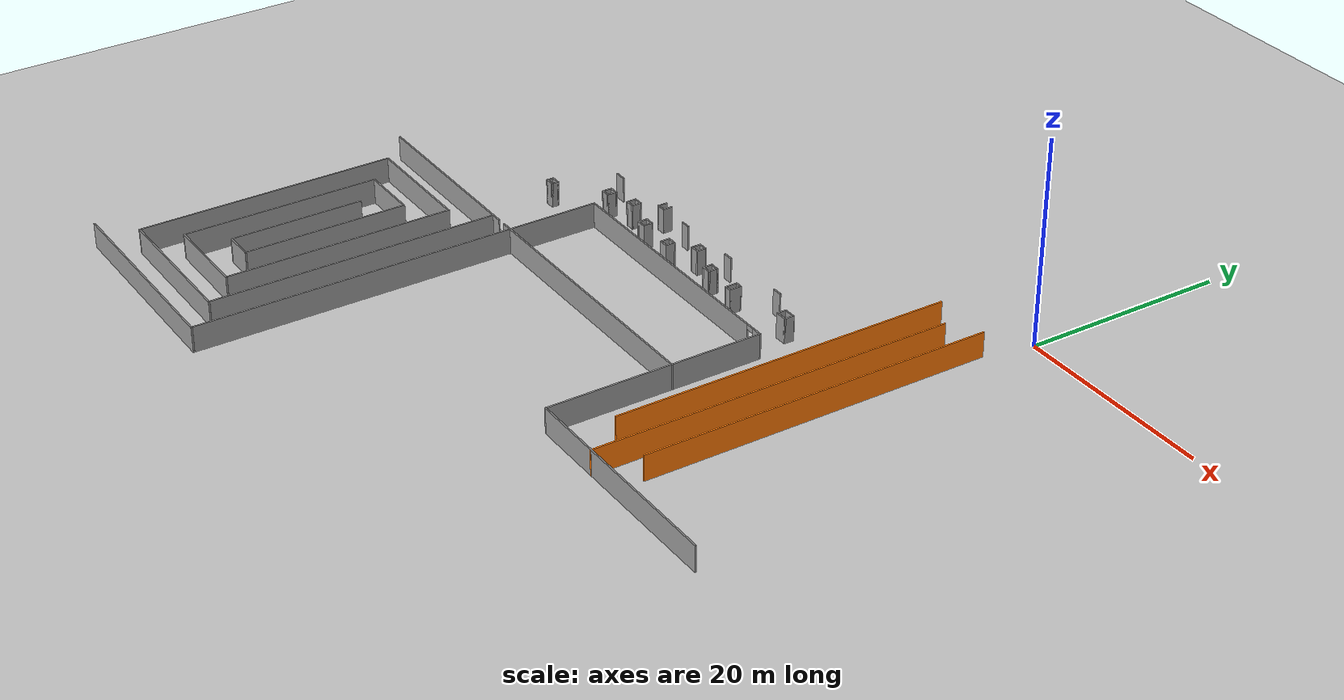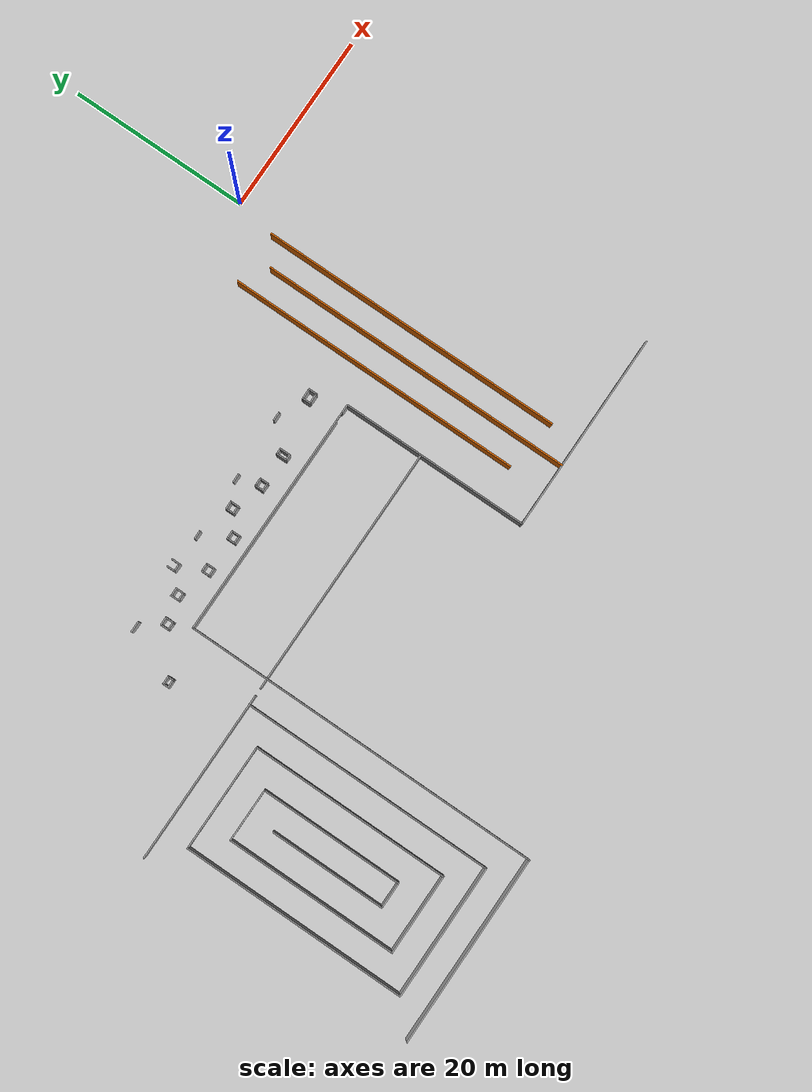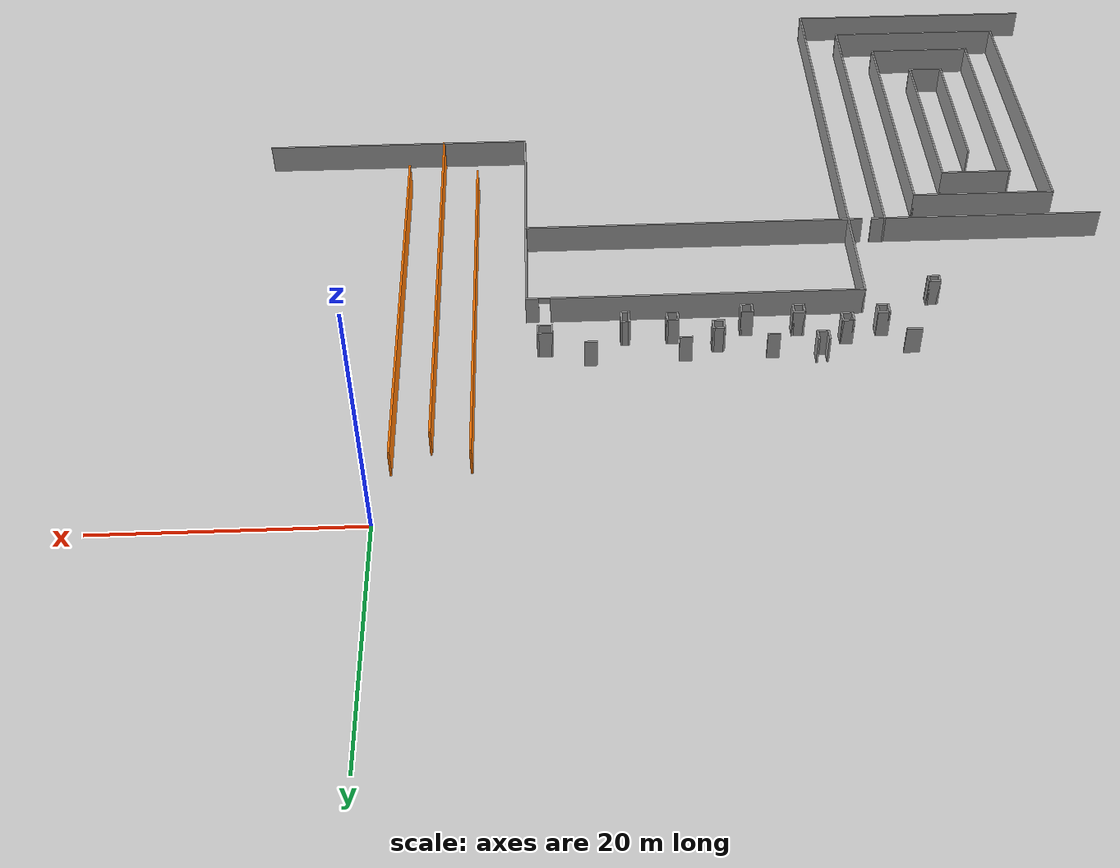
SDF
<sdf version="1.6">
 <world name="default">
  <model name="ground_plane">
   <static>1</static>
   <link name="link">
    <collision name="collision">
     <geometry><plane><normal>0 0 1</normal><size>300 300</size></plane></geometry>
     <surface>
      <contact><collide_bitmask>65535</collide_bitmask></contact>
      <friction><ode><mu>100</mu><mu2>50</mu2></ode></friction>
     </surface>
    </collision>
    <visual name="visual">
     <cast_shadows>0</cast_shadows>
     <geometry><plane><normal>0 0 1</normal><size>300 300</size></plane></geometry>
     <material>
      <script><uri>file://media/materials/scripts/gazebo.material</uri><name>Gazebo/Grey</name></script>
     </material>
    </visual>
   </link>
  </model>
  <model name="NIK">
   <pose>-0.005548 -3.7937 0 0 -0 0</pose>
   <link name="Wall_120">
    <collision name="Wall_120_Collision">
     <geometry><box><size>9 0.15 2.5</size></box></geometry>
     <pose>0 0 1.25 0 -0 0</pose>
    </collision>
    <visual name="Wall_120_Visual">
     <pose>0 0 1.25 0 -0 0</pose>
     <geometry><box><size>9 0.15 2.5</size></box></geometry>
     <material>
      <script><uri>file://media/materials/scripts/gazebo.material</uri><name>Gazebo/Grey</name></script>
      <ambient>1 1 1 1</ambient>
     </material>
     <meta><layer>0</layer></meta>
    </visual>
    <pose>-37.9187 -21.4538 0 0 -0 1.5708</pose>
   </link>
   <link name="Wall_121">
    <pose>-24.4937 -17.0288 0 0 -0 0</pose>
    <visual name="Wall_121_Visual_0">
     <pose>-0.974548 0 1.25 0 -0 0</pose>
     <geometry><box><size>25.0509 0.15 2.5</size></box></geometry>
     <material>
      <script><uri>file://media/materials/scripts/gazebo.material</uri><name>Gazebo/Grey</name></script>
      <ambient>1 1 1 1</ambient>
     </material>
     <meta><layer>0</layer></meta>
    </visual>
    <collision name="Wall_121_Collision_0">
     <geometry><box><size>25.0509 0.15 2.5</size></box></geometry>
     <pose>-0.974548 0 1.25 0 -0 0</pose>
    </collision>
    <visual name="Wall_121_Visual_1">
     <pose>12.9755 0 1.25 0 -0 0</pose>
     <geometry><box><size>1.0491 0.15 2.5</size></box></geometry>
     <material>
      <script><uri>file://media/materials/scripts/gazebo.material</uri><name>Gazebo/Grey</name></script>
      <ambient>1 1 1 1</ambient>
     </material>
     <meta><layer>0</layer></meta>
    </visual>
    <collision name="Wall_121_Collision_1">
     <geometry><box><size>1.0491 0.15 2.5</size></box></geometry>
     <pose>12.9755 0 1.25 0 -0 0</pose>
    </collision>
    <visual name="Wall_121_Visual_2">
     <pose>12.0009 0 2.25 0 -0 0</pose>
     <geometry><box><size>0.9 0.15 0.5</size></box></geometry>
     <material>
      <script><uri>file://media/materials/scripts/gazebo.material</uri><name>Gazebo/Grey</name></script>
      <ambient>1 1 1 1</ambient>
     </material>
     <meta><layer>0</layer></meta>
    </visual>
    <collision name="Wall_121_Collision_2">
     <geometry><box><size>0.9 0.15 0.5</size></box></geometry>
     <pose>12.0009 0 2.25 0 -0 0</pose>
    </collision>
   </link>
   <link name="Wall_122">
    <collision name="Wall_122_Collision">
     <geometry><box><size>9 0.15 2.5</size></box></geometry>
     <pose>0 0 1.25 0 -0 0</pose>
    </collision>
    <visual name="Wall_122_Visual">
     <pose>0 0 1.25 0 -0 0</pose>
     <geometry><box><size>9 0.15 2.5</size></box></geometry>
     <material>
      <script><uri>file://media/materials/scripts/gazebo.material</uri><name>Gazebo/Grey</name></script>
      <ambient>1 1 1 1</ambient>
     </material>
     <meta><layer>0</layer></meta>
    </visual>
    <pose>-11.0687 -21.4538 0 0 -0 -1.5708</pose>
   </link>
   <link name="Wall_128">
    <collision name="Wall_128_Collision">
     <geometry><box><size>33 0.15 2.5</size></box></geometry>
     <pose>0 0 1.25 0 -0 0</pose>
    </collision>
    <visual name="Wall_128_Visual">
     <pose>0 0 1.25 0 -0 0</pose>
     <geometry><box><size>33 0.15 2.5</size></box></geometry>
     <material>
      <script><uri>file://media/materials/scripts/gazebo.material</uri><name>Gazebo/Grey</name></script>
      <ambient>0.996078 0.47451 0.0196078 1</ambient>
     </material>
     <meta><layer>0</layer></meta>
    </visual>
    <pose>-6.97645 -17.3923 0 0 -0 -1.5708</pose>
   </link>
   <link name="Wall_130">
    <collision name="Wall_130_Collision">
     <geometry><box><size>35.25 0.15 2.5</size></box></geometry>
     <pose>0 0 1.25 0 -0 0</pose>
    </collision>
    <visual name="Wall_130_Visual">
     <pose>0 0 1.25 0 -0 0</pose>
     <geometry><box><size>35.25 0.15 2.5</size></box></geometry>
     <material>
      <script><uri>file://media/materials/scripts/gazebo.material</uri><name>Gazebo/Grey</name></script>
      <ambient>0.996078 0.47451 0.0196078 1</ambient>
     </material>
     <meta><layer>0</layer></meta>
    </visual>
    <pose>-3.98545 -20.4373 0 0 -0 1.5708</pose>
   </link>
   <link name="Wall_132">
    <collision name="Wall_132_Collision">
     <geometry><box><size>34 0.15 2.5</size></box></geometry>
     <pose>0 0 1.25 0 -0 0</pose>
    </collision>
    <visual name="Wall_132_Visual">
     <pose>0 0 1.25 0 -0 0</pose>
     <geometry><box><size>34 0.15 2.5</size></box></geometry>
     <material>
      <script><uri>file://media/materials/scripts/gazebo.material</uri><name>Gazebo/Grey</name></script>
      <ambient>0.996078 0.47451 0.0196078 1</ambient>
     </material>
     <meta><layer>0</layer></meta>
    </visual>
    <pose>-1.11945 -17.9183 0 0 -0 -1.5708</pose>
   </link>
   <link name="Wall_140">
    <collision name="Wall_140_Collision">
     <geometry><box><size>28.25 0.15 2.5</size></box></geometry>
     <pose>0 0 1.25 0 -0 0</pose>
    </collision>
    <visual name="Wall_140_Visual">
     <pose>0 0 1.25 0 -0 0</pose>
     <geometry><box><size>28.25 0.15 2.5</size></box></geometry>
     <material>
      <script><uri>file://media/materials/scripts/gazebo.material</uri><name>Gazebo/Grey</name></script>
      <ambient>1 1 1 1</ambient>
     </material>
     <meta><layer>0</layer></meta>
    </visual>
    <pose>-40.9746 -39.9261 0 0 -0 -1.5708</pose>
   </link>
   <link name="Wall_141">
    <collision name="Wall_141_Collision">
     <geometry><box><size>15 0.15 2.5</size></box></geometry>
     <pose>0 0 1.25 0 -0 0</pose>
    </collision>
    <visual name="Wall_141_Visual">
     <pose>0 0 1.25 0 -0 0</pose>
     <geometry><box><size>15 0.15 2.5</size></box></geometry>
     <material>
      <script><uri>file://media/materials/scripts/gazebo.material</uri><name>Gazebo/Grey</name></script>
      <ambient>1 1 1 1</ambient>
     </material>
     <meta><layer>0</layer></meta>
    </visual>
    <pose>-48.3996 -53.9761 0 0 -0 3.14159</pose>
   </link>
   <link name="Wall_142">
    <collision name="Wall_142_Collision">
     <geometry><box><size>25.25 0.15 2.5</size></box></geometry>
     <pose>0 0 1.25 0 -0 0</pose>
    </collision>
    <visual name="Wall_142_Visual">
     <pose>0 0 1.25 0 -0 0</pose>
     <geometry><box><size>25.25 0.15 2.5</size></box></geometry>
     <material>
      <script><uri>file://media/materials/scripts/gazebo.material</uri><name>Gazebo/Grey</name></script>
      <ambient>1 1 1 1</ambient>
     </material>
     <meta><layer>0</layer></meta>
    </visual>
    <pose>-55.8246 -41.4261 0 0 -0 1.5708</pose>
   </link>
   <link name="Wall_143">
    <collision name="Wall_143_Collision">
     <geometry><box><size>12 0.15 2.5</size></box></geometry>
     <pose>0 0 1.25 0 -0 0</pose>
    </collision>
    <visual name="Wall_143_Visual">
     <pose>0 0 1.25 0 -0 0</pose>
     <geometry><box><size>12 0.15 2.5</size></box></geometry>
     <material>
      <script><uri>file://media/materials/scripts/gazebo.material</uri><name>Gazebo/Grey</name></script>
      <ambient>1 1 1 1</ambient>
     </material>
     <meta><layer>0</layer></meta>
    </visual>
    <pose>-49.8996 -28.8761 0 0 -0 0</pose>
   </link>
   <link name="Wall_144">
    <collision name="Wall_144_Collision">
     <geometry><box><size>22.25 0.15 2.5</size></box></geometry>
     <pose>0 0 1.25 0 -0 0</pose>
    </collision>
    <visual name="Wall_144_Visual">
     <pose>0 0 1.25 0 -0 0</pose>
     <geometry><box><size>22.25 0.15 2.5</size></box></geometry>
     <material>
      <script><uri>file://media/materials/scripts/gazebo.material</uri><name>Gazebo/Grey</name></script>
      <ambient>1 1 1 1</ambient>
     </material>
     <meta><layer>0</layer></meta>
    </visual>
    <pose>-43.9746 -39.9261 0 0 -0 -1.5708</pose>
   </link>
   <link name="Wall_145">
    <collision name="Wall_145_Collision">
     <geometry><box><size>9 0.15 2.5</size></box></geometry>
     <pose>0 0 1.25 0 -0 0</pose>
    </collision>
    <visual name="Wall_145_Visual">
     <pose>0 0 1.25 0 -0 0</pose>
     <geometry><box><size>9 0.15 2.5</size></box></geometry>
     <material>
      <script><uri>file://media/materials/scripts/gazebo.material</uri><name>Gazebo/Grey</name></script>
      <ambient>1 1 1 1</ambient>
     </material>
     <meta><layer>0</layer></meta>
    </visual>
    <pose>-48.3996 -50.9761 0 0 -0 3.14159</pose>
   </link>
   <link name="Wall_146">
    <collision name="Wall_146_Collision">
     <geometry><box><size>19.25 0.15 2.5</size></box></geometry>
     <pose>0 0 1.25 0 -0 0</pose>
    </collision>
    <visual name="Wall_146_Visual">
     <pose>0 0 1.25 0 -0 0</pose>
     <geometry><box><size>19.25 0.15 2.5</size></box></geometry>
     <material>
      <script><uri>file://media/materials/scripts/gazebo.material</uri><name>Gazebo/Grey</name></script>
      <ambient>1 1 1 1</ambient>
     </material>
     <meta><layer>0</layer></meta>
    </visual>
    <pose>-52.8246 -41.4261 0 0 -0 1.5708</pose>
   </link>
   <link name="Wall_147">
    <collision name="Wall_147_Collision">
     <geometry><box><size>6 0.15 2.5</size></box></geometry>
     <pose>0 0 1.25 0 -0 0</pose>
    </collision>
    <visual name="Wall_147_Visual">
     <pose>0 0 1.25 0 -0 0</pose>
     <geometry><box><size>6 0.15 2.5</size></box></geometry>
     <material>
      <script><uri>file://media/materials/scripts/gazebo.material</uri><name>Gazebo/Grey</name></script>
      <ambient>1 1 1 1</ambient>
     </material>
     <meta><layer>0</layer></meta>
    </visual>
    <pose>-49.8996 -31.8761 0 0 -0 0</pose>
   </link>
   <link name="Wall_148">
    <collision name="Wall_148_Collision">
     <geometry><box><size>16 0.15 2.5</size></box></geometry>
     <pose>0 0 1.25 0 -0 0</pose>
    </collision>
    <visual name="Wall_148_Visual">
     <pose>0 0 1.25 0 -0 0</pose>
     <geometry><box><size>16 0.15 2.5</size></box></geometry>
     <material>
      <script><uri>file://media/materials/scripts/gazebo.material</uri><name>Gazebo/Grey</name></script>
      <ambient>1 1 1 1</ambient>
     </material>
     <meta><layer>0</layer></meta>
    </visual>
    <pose>-46.9746 -39.8011 0 0 -0 -1.5708</pose>
   </link>
   <link name="Wall_149">
    <collision name="Wall_149_Collision">
     <geometry><box><size>3 0.15 2.5</size></box></geometry>
     <pose>0 0 1.25 0 -0 0</pose>
    </collision>
    <visual name="Wall_149_Visual">
     <pose>0 0 1.25 0 -0 0</pose>
     <geometry><box><size>3 0.15 2.5</size></box></geometry>
     <material>
      <script><uri>file://media/materials/scripts/gazebo.material</uri><name>Gazebo/Grey</name></script>
      <ambient>1 1 1 1</ambient>
     </material>
     <meta><layer>0</layer></meta>
    </visual>
    <pose>-48.3996 -47.7261 0 0 -0 3.14159</pose>
   </link>
   <link name="Wall_150">
    <collision name="Wall_150_Collision">
     <geometry><box><size>13 0.15 2.5</size></box></geometry>
     <pose>0 0 1.25 0 -0 0</pose>
    </collision>
    <visual name="Wall_150_Visual">
     <pose>0 0 1.25 0 -0 0</pose>
     <geometry><box><size>13 0.15 2.5</size></box></geometry>
     <material>
      <script><uri>file://media/materials/scripts/gazebo.material</uri><name>Gazebo/Grey</name></script>
      <ambient>1 1 1 1</ambient>
     </material>
     <meta><layer>0</layer></meta>
    </visual>
    <pose>-49.8246 -41.3011 0 0 -0 1.5708</pose>
   </link>
   <link name="Wall_194">
    <collision name="Wall_194_Collision">
     <geometry><box><size>1 0.15 2.5</size></box></geometry>
     <pose>0 0 1.25 0 -0 0</pose>
    </collision>
    <visual name="Wall_194_Visual">
     <pose>0 0 1.25 0 -0 0</pose>
     <geometry><box><size>1 0.15 2.5</size></box></geometry>
     <material>
      <script><uri>file://media/materials/scripts/gazebo.material</uri><name>Gazebo/Grey</name></script>
      <ambient>1 1 1 1</ambient>
     </material>
     <meta><layer>0</layer></meta>
    </visual>
    <pose>-15.9795 -11.8692 0 0 -0 3.14159</pose>
   </link>
   <link name="Wall_198">
    <collision name="Wall_198_Collision">
     <geometry><box><size>0.75 0.15 2.5</size></box></geometry>
     <pose>0 0 1.25 0 -0 0</pose>
    </collision>
    <visual name="Wall_198_Visual">
     <pose>0 0 1.25 0 -0 0</pose>
     <geometry><box><size>0.75 0.15 2.5</size></box></geometry>
     <material>
      <script><uri>file://media/materials/scripts/gazebo.material</uri><name>Gazebo/Grey</name></script>
      <ambient>1 1 1 1</ambient>
     </material>
     <meta><layer>0</layer></meta>
    </visual>
    <pose>-18.7432 -14.038 0 0 -0 0</pose>
   </link>
   <link name="Wall_199">
    <collision name="Wall_199_Collision">
     <geometry><box><size>1.25 0.15 2.5</size></box></geometry>
     <pose>0 0 1.25 0 -0 0</pose>
    </collision>
    <visual name="Wall_199_Visual">
     <pose>0 0 1.25 0 -0 0</pose>
     <geometry><box><size>1.25 0.15 2.5</size></box></geometry>
     <material>
      <script><uri>file://media/materials/scripts/gazebo.material</uri><name>Gazebo/Grey</name></script>
      <ambient>1 1 1 1</ambient>
     </material>
     <meta><layer>0</layer></meta>
    </visual>
    <pose>-18.4432 -14.588 0 0 -0 -1.5708</pose>
   </link>
   <link name="Wall_200">
    <collision name="Wall_200_Collision">
     <geometry><box><size>0.75 0.15 2.5</size></box></geometry>
     <pose>0 0 1.25 0 -0 0</pose>
    </collision>
    <visual name="Wall_200_Visual">
     <pose>0 0 1.25 0 -0 0</pose>
     <geometry><box><size>0.75 0.15 2.5</size></box></geometry>
     <material>
      <script><uri>file://media/materials/scripts/gazebo.material</uri><name>Gazebo/Grey</name></script>
      <ambient>1 1 1 1</ambient>
     </material>
     <meta><layer>0</layer></meta>
    </visual>
    <pose>-18.7432 -15.138 0 0 -0 3.14159</pose>
   </link>
   <link name="Wall_201">
    <collision name="Wall_201_Collision">
     <geometry><box><size>1.25 0.15 2.5</size></box></geometry>
     <pose>0 0 1.25 0 -0 0</pose>
    </collision>
    <visual name="Wall_201_Visual">
     <pose>0 0 1.25 0 -0 0</pose>
     <geometry><box><size>1.25 0.15 2.5</size></box></geometry>
     <material>
      <script><uri>file://media/materials/scripts/gazebo.material</uri><name>Gazebo/Grey</name></script>
      <ambient>1 1 1 1</ambient>
     </material>
     <meta><layer>0</layer></meta>
    </visual>
    <pose>-19.0432 -14.588 0 0 -0 1.5708</pose>
   </link>
   <link name="Wall_204">
    <collision name="Wall_204_Collision">
     <geometry><box><size>1 0.15 2.5</size></box></geometry>
     <pose>0 0 1.25 0 -0 0</pose>
    </collision>
    <visual name="Wall_204_Visual">
     <pose>0 0 1.25 0 -0 0</pose>
     <geometry><box><size>1 0.15 2.5</size></box></geometry>
     <material>
      <script><uri>file://media/materials/scripts/gazebo.material</uri><name>Gazebo/Grey</name></script>
      <ambient>1 1 1 1</ambient>
     </material>
     <meta><layer>0</layer></meta>
    </visual>
    <pose>-23.3181 -12.0681 0 0 -0 0</pose>
   </link>
   <link name="Wall_208">
    <collision name="Wall_208_Collision">
     <geometry><box><size>1 0.15 2.5</size></box></geometry>
     <pose>0 0 1.25 0 -0 0</pose>
    </collision>
    <visual name="Wall_208_Visual">
     <pose>0 0 1.25 0 -0 0</pose>
     <geometry><box><size>1 0.15 2.5</size></box></geometry>
     <material>
      <script><uri>file://media/materials/scripts/gazebo.material</uri><name>Gazebo/Grey</name></script>
      <ambient>1 1 1 1</ambient>
     </material>
     <meta><layer>0</layer></meta>
    </visual>
    <pose>-26.3823 -13.4326 0 0 -0 -1.5708</pose>
   </link>
   <link name="Wall_209">
    <collision name="Wall_209_Collision">
     <geometry><box><size>1 0.15 2.5</size></box></geometry>
     <pose>0 0 1.25 0 -0 0</pose>
    </collision>
    <visual name="Wall_209_Visual">
     <pose>0 0 1.25 0 -0 0</pose>
     <geometry><box><size>1 0.15 2.5</size></box></geometry>
     <material>
      <script><uri>file://media/materials/scripts/gazebo.material</uri><name>Gazebo/Grey</name></script>
      <ambient>1 1 1 1</ambient>
     </material>
     <meta><layer>0</layer></meta>
    </visual>
    <pose>-25.9573 -13.8576 0 0 -0 0</pose>
   </link>
   <link name="Wall_210">
    <collision name="Wall_210_Collision">
     <geometry><box><size>1 0.15 2.5</size></box></geometry>
     <pose>0 0 1.25 0 -0 0</pose>
    </collision>
    <visual name="Wall_210_Visual">
     <pose>0 0 1.25 0 -0 0</pose>
     <geometry><box><size>1 0.15 2.5</size></box></geometry>
     <material>
      <script><uri>file://media/materials/scripts/gazebo.material</uri><name>Gazebo/Grey</name></script>
      <ambient>1 1 1 1</ambient>
     </material>
     <meta><layer>0</layer></meta>
    </visual>
    <pose>-25.5323 -13.4326 0 0 -0 1.5708</pose>
   </link>
   <link name="Wall_211">
    <collision name="Wall_211_Collision">
     <geometry><box><size>1 0.15 2.5</size></box></geometry>
     <pose>0 0 1.25 0 -0 0</pose>
    </collision>
    <visual name="Wall_211_Visual">
     <pose>0 0 1.25 0 -0 0</pose>
     <geometry><box><size>1 0.15 2.5</size></box></geometry>
     <material>
      <script><uri>file://media/materials/scripts/gazebo.material</uri><name>Gazebo/Grey</name></script>
      <ambient>1 1 1 1</ambient>
     </material>
     <meta><layer>0</layer></meta>
    </visual>
    <pose>-25.9573 -13.0076 0 0 -0 3.14159</pose>
   </link>
   <link name="Wall_213">
    <collision name="Wall_213_Collision">
     <geometry><box><size>1 0.15 2.5</size></box></geometry>
     <pose>0 0 1.25 0 -0 0</pose>
    </collision>
    <visual name="Wall_213_Visual">
     <pose>0 0 1.25 0 -0 0</pose>
     <geometry><box><size>1 0.15 2.5</size></box></geometry>
     <material>
      <script><uri>file://media/materials/scripts/gazebo.material</uri><name>Gazebo/Grey</name></script>
      <ambient>1 1 1 1</ambient>
     </material>
     <meta><layer>0</layer></meta>
    </visual>
    <pose>-28.7322 -15.2041 0 0 -0 -1.5708</pose>
   </link>
   <link name="Wall_214">
    <collision name="Wall_214_Collision">
     <geometry><box><size>1 0.15 2.5</size></box></geometry>
     <pose>0 0 1.25 0 -0 0</pose>
    </collision>
    <visual name="Wall_214_Visual">
     <pose>0 0 1.25 0 -0 0</pose>
     <geometry><box><size>1 0.15 2.5</size></box></geometry>
     <material>
      <script><uri>file://media/materials/scripts/gazebo.material</uri><name>Gazebo/Grey</name></script>
      <ambient>1 1 1 1</ambient>
     </material>
     <meta><layer>0</layer></meta>
    </visual>
    <pose>-28.3072 -15.6291 0 0 -0 0</pose>
   </link>
   <link name="Wall_215">
    <collision name="Wall_215_Collision">
     <geometry><box><size>1 0.15 2.5</size></box></geometry>
     <pose>0 0 1.25 0 -0 0</pose>
    </collision>
    <visual name="Wall_215_Visual">
     <pose>0 0 1.25 0 -0 0</pose>
     <geometry><box><size>1 0.15 2.5</size></box></geometry>
     <material>
      <script><uri>file://media/materials/scripts/gazebo.material</uri><name>Gazebo/Grey</name></script>
      <ambient>1 1 1 1</ambient>
     </material>
     <meta><layer>0</layer></meta>
    </visual>
    <pose>-27.8822 -15.2041 0 0 -0 1.5708</pose>
   </link>
   <link name="Wall_216">
    <collision name="Wall_216_Collision">
     <geometry><box><size>1 0.15 2.5</size></box></geometry>
     <pose>0 0 1.25 0 -0 0</pose>
    </collision>
    <visual name="Wall_216_Visual">
     <pose>0 0 1.25 0 -0 0</pose>
     <geometry><box><size>1 0.15 2.5</size></box></geometry>
     <material>
      <script><uri>file://media/materials/scripts/gazebo.material</uri><name>Gazebo/Grey</name></script>
      <ambient>1 1 1 1</ambient>
     </material>
     <meta><layer>0</layer></meta>
    </visual>
    <pose>-28.3072 -14.7791 0 0 -0 3.14159</pose>
   </link>
   <link name="Wall_219">
    <collision name="Wall_219_Collision">
     <geometry><box><size>1 0.15 2.5</size></box></geometry>
     <pose>0 0 1.25 0 -0 0</pose>
    </collision>
    <visual name="Wall_219_Visual">
     <pose>0 0 1.25 0 -0 0</pose>
     <geometry><box><size>1 0.15 2.5</size></box></geometry>
     <material>
      <script><uri>file://media/materials/scripts/gazebo.material</uri><name>Gazebo/Grey</name></script>
      <ambient>1 1 1 1</ambient>
     </material>
     <meta><layer>0</layer></meta>
    </visual>
    <pose>-30.133 -12.1404 0 0 -0 0</pose>
   </link>
   <link name="Wall_223">
    <collision name="Wall_223_Collision">
     <geometry><box><size>1 0.15 2.5</size></box></geometry>
     <pose>0 0 1.25 0 -0 0</pose>
    </collision>
    <visual name="Wall_223_Visual">
     <pose>0 0 1.25 0 -0 0</pose>
     <geometry><box><size>1 0.15 2.5</size></box></geometry>
     <material>
      <script><uri>file://media/materials/scripts/gazebo.material</uri><name>Gazebo/Grey</name></script>
      <ambient>1 1 1 1</ambient>
     </material>
     <meta><layer>0</layer></meta>
    </visual>
    <pose>-32.7995 -14.9872 0 0 -0 -1.5708</pose>
   </link>
   <link name="Wall_224">
    <collision name="Wall_224_Collision">
     <geometry><box><size>1 0.15 2.5</size></box></geometry>
     <pose>0 0 1.25 0 -0 0</pose>
    </collision>
    <visual name="Wall_224_Visual">
     <pose>0 0 1.25 0 -0 0</pose>
     <geometry><box><size>1 0.15 2.5</size></box></geometry>
     <material>
      <script><uri>file://media/materials/scripts/gazebo.material</uri><name>Gazebo/Grey</name></script>
      <ambient>1 1 1 1</ambient>
     </material>
     <meta><layer>0</layer></meta>
    </visual>
    <pose>-32.3745 -15.4122 0 0 -0 0</pose>
   </link>
   <link name="Wall_225">
    <collision name="Wall_225_Collision">
     <geometry><box><size>1 0.15 2.5</size></box></geometry>
     <pose>0 0 1.25 0 -0 0</pose>
    </collision>
    <visual name="Wall_225_Visual">
     <pose>0 0 1.25 0 -0 0</pose>
     <geometry><box><size>1 0.15 2.5</size></box></geometry>
     <material>
      <script><uri>file://media/materials/scripts/gazebo.material</uri><name>Gazebo/Grey</name></script>
      <ambient>1 1 1 1</ambient>
     </material>
     <meta><layer>0</layer></meta>
    </visual>
    <pose>-31.9495 -14.9872 0 0 -0 1.5708</pose>
   </link>
   <link name="Wall_226">
    <collision name="Wall_226_Collision">
     <geometry><box><size>1 0.15 2.5</size></box></geometry>
     <pose>0 0 1.25 0 -0 0</pose>
    </collision>
    <visual name="Wall_226_Visual">
     <pose>0 0 1.25 0 -0 0</pose>
     <geometry><box><size>1 0.15 2.5</size></box></geometry>
     <material>
      <script><uri>file://media/materials/scripts/gazebo.material</uri><name>Gazebo/Grey</name></script>
      <ambient>1 1 1 1</ambient>
     </material>
     <meta><layer>0</layer></meta>
    </visual>
    <pose>-32.3745 -14.5622 0 0 -0 3.14159</pose>
   </link>
   <link name="Wall_229">
    <collision name="Wall_229_Collision">
     <geometry><box><size>1 0.15 2.5</size></box></geometry>
     <pose>0 0 1.25 0 -0 0</pose>
    </collision>
    <visual name="Wall_229_Visual">
     <pose>0 0 1.25 0 -0 0</pose>
     <geometry><box><size>1 0.15 2.5</size></box></geometry>
     <material>
      <script><uri>file://media/materials/scripts/gazebo.material</uri><name>Gazebo/Grey</name></script>
      <ambient>1 1 1 1</ambient>
     </material>
     <meta><layer>0</layer></meta>
    </visual>
    <pose>-34.354 -11.8961 0 0 -0 -1.5708</pose>
   </link>
   <link name="Wall_230">
    <collision name="Wall_230_Collision">
     <geometry><box><size>1 0.15 2.5</size></box></geometry>
     <pose>0 0 1.25 0 -0 0</pose>
    </collision>
    <visual name="Wall_230_Visual">
     <pose>0 0 1.25 0 -0 0</pose>
     <geometry><box><size>1 0.15 2.5</size></box></geometry>
     <material>
      <script><uri>file://media/materials/scripts/gazebo.material</uri><name>Gazebo/Grey</name></script>
      <ambient>1 1 1 1</ambient>
     </material>
     <meta><layer>0</layer></meta>
    </visual>
    <pose>-33.929 -12.3211 0 0 -0 0</pose>
   </link>
   <link name="Wall_231">
    <collision name="Wall_231_Collision">
     <geometry><box><size>1 0.15 2.5</size></box></geometry>
     <pose>0 0 1.25 0 -0 0</pose>
    </collision>
    <visual name="Wall_231_Visual">
     <pose>0 0 1.25 0 -0 0</pose>
     <geometry><box><size>1 0.15 2.5</size></box></geometry>
     <material>
      <script><uri>file://media/materials/scripts/gazebo.material</uri><name>Gazebo/Grey</name></script>
      <ambient>1 1 1 1</ambient>
     </material>
     <meta><layer>0</layer></meta>
    </visual>
    <pose>-33.504 -11.8961 0 0 -0 1.5708</pose>
   </link>
   <link name="Wall_234">
    <collision name="Wall_234_Collision">
     <geometry><box><size>1 0.15 2.5</size></box></geometry>
     <pose>0 0 1.25 0 -0 0</pose>
    </collision>
    <visual name="Wall_234_Visual">
     <pose>0 0 1.25 0 -0 0</pose>
     <geometry><box><size>1 0.15 2.5</size></box></geometry>
     <material>
      <script><uri>file://media/materials/scripts/gazebo.material</uri><name>Gazebo/Grey</name></script>
      <ambient>1 1 1 1</ambient>
     </material>
     <meta><layer>0</layer></meta>
    </visual>
    <pose>-39.4335 -14.698 0 0 -0 -1.5708</pose>
   </link>
   <link name="Wall_235">
    <collision name="Wall_235_Collision">
     <geometry><box><size>1 0.15 2.5</size></box></geometry>
     <pose>0 0 1.25 0 -0 0</pose>
    </collision>
    <visual name="Wall_235_Visual">
     <pose>0 0 1.25 0 -0 0</pose>
     <geometry><box><size>1 0.15 2.5</size></box></geometry>
     <material>
      <script><uri>file://media/materials/scripts/gazebo.material</uri><name>Gazebo/Grey</name></script>
      <ambient>1 1 1 1</ambient>
     </material>
     <meta><layer>0</layer></meta>
    </visual>
    <pose>-39.0085 -15.123 0 0 -0 0</pose>
   </link>
   <link name="Wall_236">
    <collision name="Wall_236_Collision">
     <geometry><box><size>1 0.15 2.5</size></box></geometry>
     <pose>0 0 1.25 0 -0 0</pose>
    </collision>
    <visual name="Wall_236_Visual">
     <pose>0 0 1.25 0 -0 0</pose>
     <geometry><box><size>1 0.15 2.5</size></box></geometry>
     <material>
      <script><uri>file://media/materials/scripts/gazebo.material</uri><name>Gazebo/Grey</name></script>
      <ambient>1 1 1 1</ambient>
     </material>
     <meta><layer>0</layer></meta>
    </visual>
    <pose>-38.5835 -14.698 0 0 -0 1.5708</pose>
   </link>
   <link name="Wall_237">
    <collision name="Wall_237_Collision">
     <geometry><box><size>1 0.15 2.5</size></box></geometry>
     <pose>0 0 1.25 0 -0 0</pose>
    </collision>
    <visual name="Wall_237_Visual">
     <pose>0 0 1.25 0 -0 0</pose>
     <geometry><box><size>1 0.15 2.5</size></box></geometry>
     <material>
      <script><uri>file://media/materials/scripts/gazebo.material</uri><name>Gazebo/Grey</name></script>
      <ambient>1 1 1 1</ambient>
     </material>
     <meta><layer>0</layer></meta>
    </visual>
    <pose>-39.0085 -14.273 0 0 -0 3.14159</pose>
   </link>
   <link name="Wall_240">
    <collision name="Wall_240_Collision">
     <geometry><box><size>1.25 0.15 2.5</size></box></geometry>
     <pose>0 0 1.25 0 -0 0</pose>
    </collision>
    <visual name="Wall_240_Visual">
     <pose>0 0 1.25 0 -0 0</pose>
     <geometry><box><size>1.25 0.15 2.5</size></box></geometry>
     <material>
      <script><uri>file://media/materials/scripts/gazebo.material</uri><name>Gazebo/Grey</name></script>
      <ambient>1 1 1 1</ambient>
     </material>
     <meta><layer>0</layer></meta>
    </visual>
    <pose>-41.0527 -12.2669 0 0 -0 0</pose>
   </link>
   <link name="Wall_244">
    <collision name="Wall_244_Collision">
     <geometry><box><size>1 0.15 2.5</size></box></geometry>
     <pose>0 0 1.25 0 -0 0</pose>
    </collision>
    <visual name="Wall_244_Visual">
     <pose>0 0 1.25 0 -0 0</pose>
     <geometry><box><size>1 0.15 2.5</size></box></geometry>
     <material>
      <script><uri>file://media/materials/scripts/gazebo.material</uri><name>Gazebo/Grey</name></script>
      <ambient>1 1 1 1</ambient>
     </material>
     <meta><layer>0</layer></meta>
    </visual>
    <pose>-36.5052 -13.8846 0 0 -0 -1.5708</pose>
   </link>
   <link name="Wall_245">
    <collision name="Wall_245_Collision">
     <geometry><box><size>1 0.15 2.5</size></box></geometry>
     <pose>0 0 1.25 0 -0 0</pose>
    </collision>
    <visual name="Wall_245_Visual">
     <pose>0 0 1.25 0 -0 0</pose>
     <geometry><box><size>1 0.15 2.5</size></box></geometry>
     <material>
      <script><uri>file://media/materials/scripts/gazebo.material</uri><name>Gazebo/Grey</name></script>
      <ambient>1 1 1 1</ambient>
     </material>
     <meta><layer>0</layer></meta>
    </visual>
    <pose>-36.0801 -14.3095 0 0 -0 0</pose>
   </link>
   <link name="Wall_246">
    <collision name="Wall_246_Collision">
     <geometry><box><size>1 0.15 2.5</size></box></geometry>
     <pose>0 0 1.25 0 -0 0</pose>
    </collision>
    <visual name="Wall_246_Visual">
     <pose>0 0 1.25 0 -0 0</pose>
     <geometry><box><size>1 0.15 2.5</size></box></geometry>
     <material>
      <script><uri>file://media/materials/scripts/gazebo.material</uri><name>Gazebo/Grey</name></script>
      <ambient>1 1 1 1</ambient>
     </material>
     <meta><layer>0</layer></meta>
    </visual>
    <pose>-35.6551 -13.8846 0 0 -0 1.5708</pose>
   </link>
   <link name="Wall_247">
    <collision name="Wall_247_Collision">
     <geometry><box><size>1 0.15 2.5</size></box></geometry>
     <pose>0 0 1.25 0 -0 0</pose>
    </collision>
    <visual name="Wall_247_Visual">
     <pose>0 0 1.25 0 -0 0</pose>
     <geometry><box><size>1 0.15 2.5</size></box></geometry>
     <material>
      <script><uri>file://media/materials/scripts/gazebo.material</uri><name>Gazebo/Grey</name></script>
      <ambient>1 1 1 1</ambient>
     </material>
     <meta><layer>0</layer></meta>
    </visual>
    <pose>-36.0801 -13.4596 0 0 -0 3.14159</pose>
   </link>
   <link name="Wall_252">
    <collision name="Wall_252_Collision">
     <geometry><box><size>1 0.15 2.5</size></box></geometry>
     <pose>0 0 1.25 0 -0 0</pose>
    </collision>
    <visual name="Wall_252_Visual">
     <pose>0 0 1.25 0 -0 0</pose>
     <geometry><box><size>1 0.15 2.5</size></box></geometry>
     <material>
      <script><uri>file://media/materials/scripts/gazebo.material</uri><name>Gazebo/Grey</name></script>
      <ambient>1 1 1 1</ambient>
     </material>
     <meta><layer>0</layer></meta>
    </visual>
    <pose>-22.8574 -14.5172 0 0 -0 -1.5708</pose>
   </link>
   <link name="Wall_253">
    <collision name="Wall_253_Collision">
     <geometry><box><size>1 0.15 2.5</size></box></geometry>
     <pose>0 0 1.25 0 -0 0</pose>
    </collision>
    <visual name="Wall_253_Visual">
     <pose>0 0 1.25 0 -0 0</pose>
     <geometry><box><size>1 0.15 2.5</size></box></geometry>
     <material>
      <script><uri>file://media/materials/scripts/gazebo.material</uri><name>Gazebo/Grey</name></script>
      <ambient>1 1 1 1</ambient>
     </material>
     <meta><layer>0</layer></meta>
    </visual>
    <pose>-22.4324 -14.9422 0 0 -0 0</pose>
   </link>
   <link name="Wall_254">
    <collision name="Wall_254_Collision">
     <geometry><box><size>1 0.15 2.5</size></box></geometry>
     <pose>0 0 1.25 0 -0 0</pose>
    </collision>
    <visual name="Wall_254_Visual">
     <pose>0 0 1.25 0 -0 0</pose>
     <geometry><box><size>1 0.15 2.5</size></box></geometry>
     <material>
      <script><uri>file://media/materials/scripts/gazebo.material</uri><name>Gazebo/Grey</name></script>
      <ambient>1 1 1 1</ambient>
     </material>
     <meta><layer>0</layer></meta>
    </visual>
    <pose>-22.0074 -14.5172 0 0 -0 1.5708</pose>
   </link>
   <link name="Wall_255">
    <collision name="Wall_255_Collision">
     <geometry><box><size>1 0.15 2.5</size></box></geometry>
     <pose>0 0 1.25 0 -0 0</pose>
    </collision>
    <visual name="Wall_255_Visual">
     <pose>0 0 1.25 0 -0 0</pose>
     <geometry><box><size>1 0.15 2.5</size></box></geometry>
     <material>
      <script><uri>file://media/materials/scripts/gazebo.material</uri><name>Gazebo/Grey</name></script>
      <ambient>1 1 1 1</ambient>
     </material>
     <meta><layer>0</layer></meta>
    </visual>
    <pose>-22.4324 -14.0922 0 0 -0 3.14159</pose>
   </link>
   <link name="Wall_257">
    <collision name="Wall_257_Collision">
     <geometry><box><size>1 0.15 2.5</size></box></geometry>
     <pose>0 0 1.25 0 -0 0</pose>
    </collision>
    <visual name="Wall_257_Visual">
     <pose>0 0 1.25 0 -0 0</pose>
     <geometry><box><size>1 0.15 2.5</size></box></geometry>
     <material>
      <script><uri>file://media/materials/scripts/gazebo.material</uri><name>Gazebo/Grey</name></script>
      <ambient>1 1 1 1</ambient>
     </material>
     <meta><layer>0</layer></meta>
    </visual>
    <pose>-13.0238 -13.4326 0 0 -0 -1.5708</pose>
   </link>
   <link name="Wall_258">
    <collision name="Wall_258_Collision">
     <geometry><box><size>1.25 0.15 2.5</size></box></geometry>
     <pose>0 0 1.25 0 -0 0</pose>
    </collision>
    <visual name="Wall_258_Visual">
     <pose>0 0 1.25 0 -0 0</pose>
     <geometry><box><size>1.25 0.15 2.5</size></box></geometry>
     <material>
      <script><uri>file://media/materials/scripts/gazebo.material</uri><name>Gazebo/Grey</name></script>
      <ambient>1 1 1 1</ambient>
     </material>
     <meta><layer>0</layer></meta>
    </visual>
    <pose>-12.4738 -13.8576 0 0 -0 0</pose>
   </link>
   <link name="Wall_259">
    <collision name="Wall_259_Collision">
     <geometry><box><size>1 0.15 2.5</size></box></geometry>
     <pose>0 0 1.25 0 -0 0</pose>
    </collision>
    <visual name="Wall_259_Visual">
     <pose>0 0 1.25 0 -0 0</pose>
     <geometry><box><size>1 0.15 2.5</size></box></geometry>
     <material>
      <script><uri>file://media/materials/scripts/gazebo.material</uri><name>Gazebo/Grey</name></script>
      <ambient>1 1 1 1</ambient>
     </material>
     <meta><layer>0</layer></meta>
    </visual>
    <pose>-11.9238 -13.4326 0 0 -0 1.5708</pose>
   </link>
   <link name="Wall_26">
    <collision name="Wall_26_Collision">
     <geometry><box><size>22.25 0.15 2.5</size></box></geometry>
     <pose>0 0 1.25 0 -0 0</pose>
    </collision>
    <visual name="Wall_26_Visual">
     <pose>0 0 1.25 0 -0 0</pose>
     <geometry><box><size>22.25 0.15 2.5</size></box></geometry>
     <material>
      <script><uri>file://media/materials/scripts/gazebo.material</uri><name>Gazebo/Grey</name></script>
      <ambient>1 1 1 1</ambient>
     </material>
     <meta><layer>0</layer></meta>
    </visual>
    <pose>-0.018685 -37.9788 0 0 -0 3.14159</pose>
   </link>
   <link name="Wall_260">
    <collision name="Wall_260_Collision">
     <geometry><box><size>1.25 0.15 2.5</size></box></geometry>
     <pose>0 0 1.25 0 -0 0</pose>
    </collision>
    <visual name="Wall_260_Visual">
     <pose>0 0 1.25 0 -0 0</pose>
     <geometry><box><size>1.25 0.15 2.5</size></box></geometry>
     <material>
      <script><uri>file://media/materials/scripts/gazebo.material</uri><name>Gazebo/Grey</name></script>
      <ambient>1 1 1 1</ambient>
     </material>
     <meta><layer>0</layer></meta>
    </visual>
    <pose>-12.4738 -13.0076 0 0 -0 3.14159</pose>
   </link>
   <link name="Wall_28">
    <collision name="Wall_28_Collision">
     <geometry><box><size>12.25 0.15 2.5</size></box></geometry>
     <pose>0 0 1.25 0 -0 0</pose>
    </collision>
    <visual name="Wall_28_Visual">
     <pose>0 0 1.25 0 -0 0</pose>
     <geometry><box><size>12.25 0.15 2.5</size></box></geometry>
     <material>
      <script><uri>file://media/materials/scripts/gazebo.material</uri><name>Gazebo/Grey</name></script>
      <ambient>1 1 1 1</ambient>
     </material>
     <meta><layer>0</layer></meta>
    </visual>
    <pose>-11.0687 -31.9288 0 0 -0 1.5708</pose>
   </link>
   <link name="Wall_29">
    <collision name="Wall_29_Collision">
     <geometry><box><size>27 0.15 2.5</size></box></geometry>
     <pose>0 0 1.25 0 -0 0</pose>
    </collision>
    <visual name="Wall_29_Visual">
     <pose>0 0 1.25 0 -0 0</pose>
     <geometry><box><size>27 0.15 2.5</size></box></geometry>
     <material>
      <script><uri>file://media/materials/scripts/gazebo.material</uri><name>Gazebo/Grey</name></script>
      <ambient>1 1 1 1</ambient>
     </material>
     <meta><layer>0</layer></meta>
    </visual>
    <pose>-24.4937 -25.8788 0 0 -0 3.14159</pose>
   </link>
   <link name="Wall_30">
    <collision name="Wall_30_Collision">
     <geometry><box><size>31.25 0.15 2.5</size></box></geometry>
     <pose>0 0 1.25 0 -0 0</pose>
    </collision>
    <visual name="Wall_30_Visual">
     <pose>0 0 1.25 0 -0 0</pose>
     <geometry><box><size>31.25 0.15 2.5</size></box></geometry>
     <material>
      <script><uri>file://media/materials/scripts/gazebo.material</uri><name>Gazebo/Grey</name></script>
      <ambient>1 1 1 1</ambient>
     </material>
     <meta><layer>0</layer></meta>
    </visual>
    <pose>-37.9187 -41.4288 0 0 -0 -1.5708</pose>
   </link>
   <link name="Wall_32">
    <collision name="Wall_32_Collision">
     <geometry><box><size>21.25 0.15 2.5</size></box></geometry>
     <pose>0 0 1.25 0 -0 0</pose>
    </collision>
    <visual name="Wall_32_Visual">
     <pose>0 0 1.25 0 -0 0</pose>
     <geometry><box><size>21.25 0.15 2.5</size></box></geometry>
     <material>
      <script><uri>file://media/materials/scripts/gazebo.material</uri><name>Gazebo/Grey</name></script>
      <ambient>1 1 1 1</ambient>
     </material>
     <meta><layer>0</layer></meta>
    </visual>
    <pose>-48.4687 -56.9788 0 0 -0 3.14159</pose>
   </link>
   <link name="Wall_530">
    <collision name="Wall_530_Collision">
     <geometry><box><size>0.75 0.15 2.5</size></box></geometry>
     <pose>0 0 1.25 0 -0 0</pose>
    </collision>
    <visual name="Wall_530_Visual">
     <pose>0 0 1.25 0 -0 0</pose>
     <geometry><box><size>0.75 0.15 2.5</size></box></geometry>
     <material>
      <script><uri>file://media/materials/scripts/gazebo.material</uri><name>Gazebo/Grey</name></script>
      <ambient>1 1 1 1</ambient>
     </material>
     <meta><layer>0</layer></meta>
    </visual>
    <pose>-44.0661 -18.0654 0 0 -0 -1.5708</pose>
   </link>
   <link name="Wall_531">
    <collision name="Wall_531_Collision">
     <geometry><box><size>1 0.15 2.5</size></box></geometry>
     <pose>0 0 1.25 0 -0 0</pose>
    </collision>
    <visual name="Wall_531_Visual">
     <pose>0 0 1.25 0 -0 0</pose>
     <geometry><box><size>1 0.15 2.5</size></box></geometry>
     <material>
      <script><uri>file://media/materials/scripts/gazebo.material</uri><name>Gazebo/Grey</name></script>
      <ambient>1 1 1 1</ambient>
     </material>
     <meta><layer>0</layer></meta>
    </visual>
    <pose>-43.6411 -18.3654 0 0 -0 0</pose>
   </link>
   <link name="Wall_532">
    <collision name="Wall_532_Collision">
     <geometry><box><size>0.75 0.15 2.5</size></box></geometry>
     <pose>0 0 1.25 0 -0 0</pose>
    </collision>
    <visual name="Wall_532_Visual">
     <pose>0 0 1.25 0 -0 0</pose>
     <geometry><box><size>0.75 0.15 2.5</size></box></geometry>
     <material>
      <script><uri>file://media/materials/scripts/gazebo.material</uri><name>Gazebo/Grey</name></script>
      <ambient>1 1 1 1</ambient>
     </material>
     <meta><layer>0</layer></meta>
    </visual>
    <pose>-43.2161 -18.0654 0 0 -0 1.5708</pose>
   </link>
   <link name="Wall_533">
    <collision name="Wall_533_Collision">
     <geometry><box><size>1 0.15 2.5</size></box></geometry>
     <pose>0 0 1.25 0 -0 0</pose>
    </collision>
    <visual name="Wall_533_Visual">
     <pose>0 0 1.25 0 -0 0</pose>
     <geometry><box><size>1 0.15 2.5</size></box></geometry>
     <material>
      <script><uri>file://media/materials/scripts/gazebo.material</uri><name>Gazebo/Grey</name></script>
      <ambient>1 1 1 1</ambient>
     </material>
     <meta><layer>0</layer></meta>
    </visual>
    <pose>-43.6411 -17.7654 0 0 -0 3.14159</pose>
   </link>
   <link name="Wall_541">
    <collision name="Wall_541_Collision">
     <geometry><box><size>1.25 0.15 2.5</size></box></geometry>
     <pose>0 0 1.25 0 -0 0</pose>
    </collision>
    <visual name="Wall_541_Visual">
     <pose>0 0 1.25 0 -0 0</pose>
     <geometry><box><size>1.25 0.15 2.5</size></box></geometry>
     <material>
      <script><uri>file://media/materials/scripts/gazebo.material</uri><name>Gazebo/Grey</name></script>
      <ambient>1 1 1 1</ambient>
     </material>
     <meta><layer>0</layer></meta>
    </visual>
    <pose>-38.4687 -25.8788 0 0 -0 3.14159</pose>
   </link>
   <link name="Wall_545">
    <collision name="Wall_545_Collision">
     <geometry><box><size>19.25 0.15 2.5</size></box></geometry>
     <pose>0 0 1.25 0 -0 0</pose>
    </collision>
    <visual name="Wall_545_Visual">
     <pose>0 0 1.25 0 -0 0</pose>
     <geometry><box><size>19.25 0.15 2.5</size></box></geometry>
     <material>
      <script><uri>file://media/materials/scripts/gazebo.material</uri><name>Gazebo/Grey</name></script>
      <ambient>1 1 1 1</ambient>
     </material>
     <meta><layer>0</layer></meta>
    </visual>
    <pose>-49.4804 -25.8946 0 0 -0 0</pose>
   </link>
   <static>1</static>
  </model>
 </world>
</sdf>
